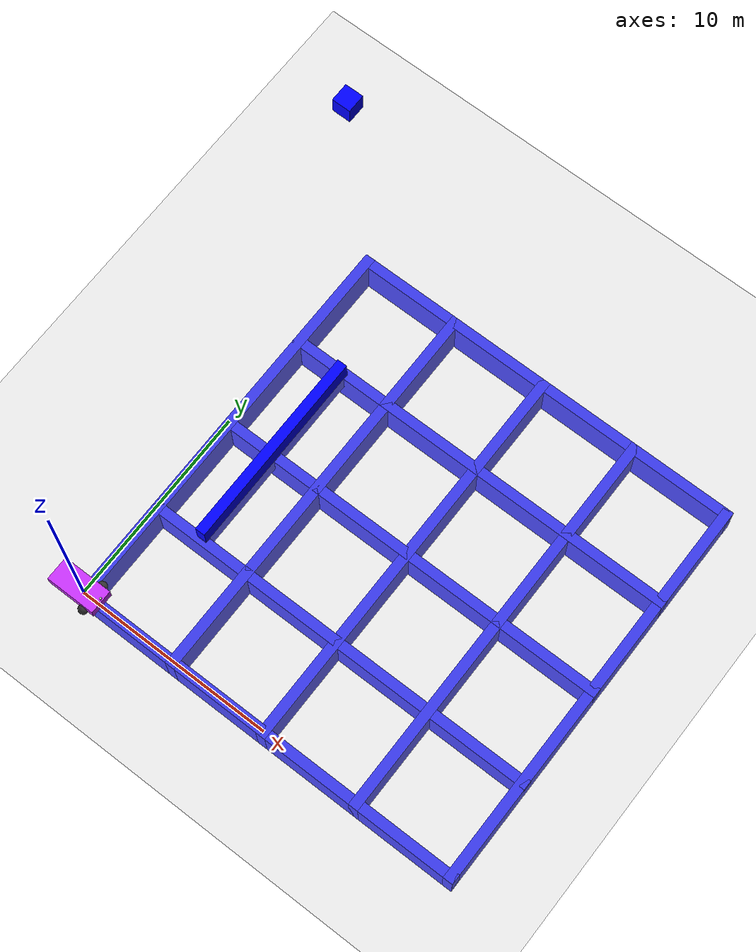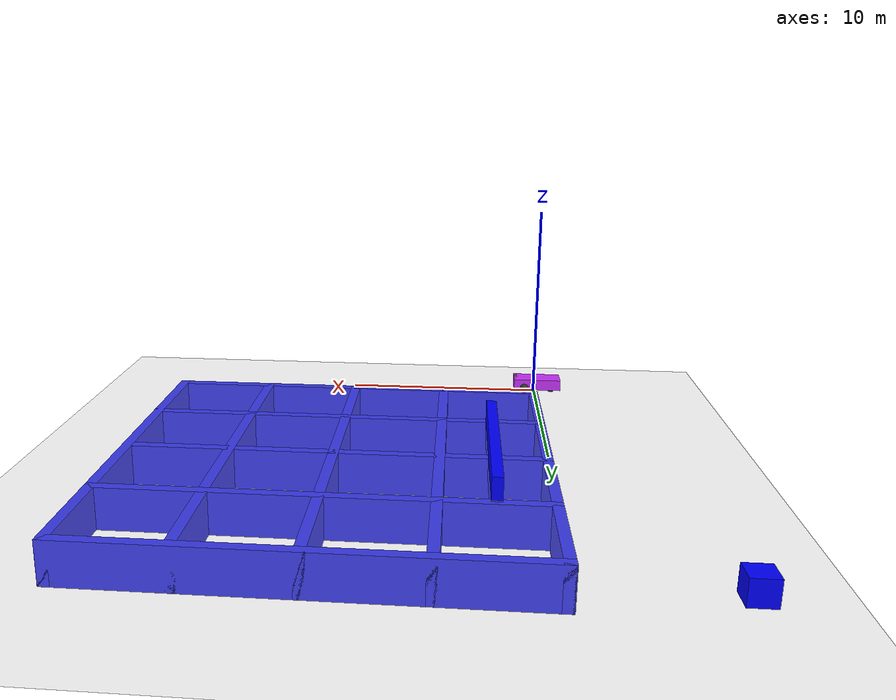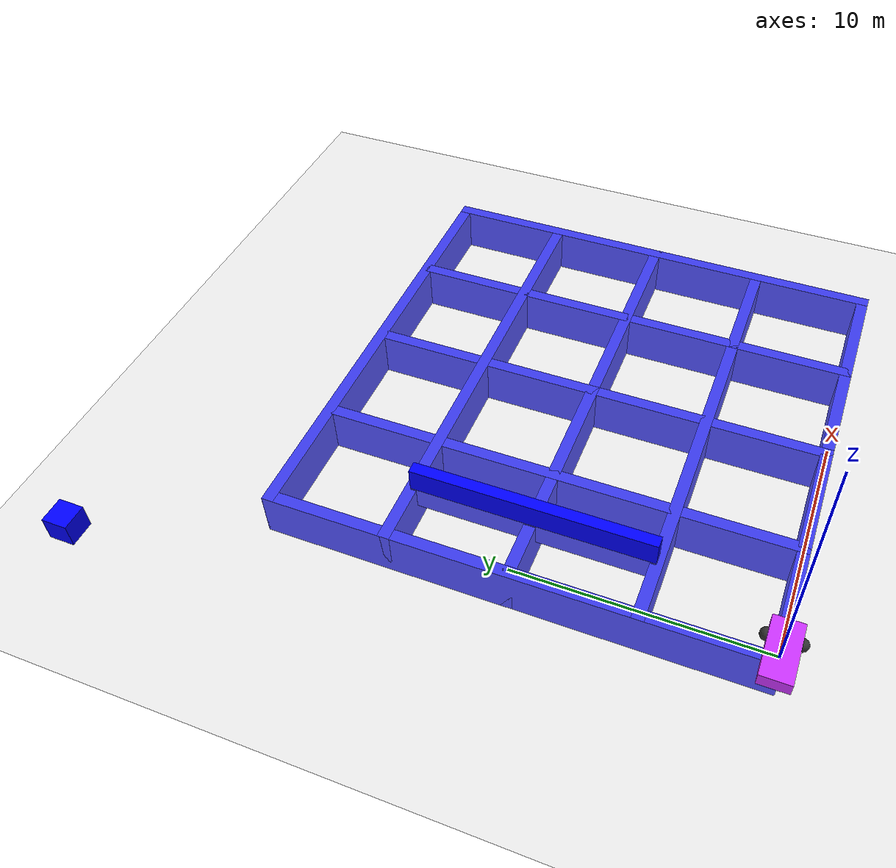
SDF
<?xml version="1.0" ?>
<sdf version="1.8">
  <world name="demo">
    <plugin
      filename="ignition-gazebo-physics-system"
      name="ignition::gazebo::systems::Physics">
    </plugin>
    <plugin
      filename="ignition-gazebo-sensors-system"
      name="ignition::gazebo::systems::Sensors">
      <render_engine>ogre2</render_engine>
    </plugin>
    <plugin
      filename="ignition-gazebo-scene-broadcaster-system"
      name="ignition::gazebo::systems::SceneBroadcaster">
    </plugin>
    <plugin
      filename="ignition-gazebo-user-commands-system"
      name="ignition::gazebo::systems::UserCommands">
    </plugin>
    <plugin
      filename="BasicSystem"
      name="ros_gz_gazebo::BasicSystem">
    </plugin>
    <plugin
      filename="FullSystem"
      name="ros_gz_gazebo::FullSystem">
    </plugin>

    <light name="sun" type="directional">
      <cast_shadows>true</cast_shadows>
      <pose>0 0 10 0 0 0</pose>
      <diffuse>0.8 0.8 0.8 1</diffuse>
      <specular>0.2 0.2 0.2 1</specular>
      <attenuation>
        <range>1000</range>
        <constant>0.9</constant>
        <linear>0.01</linear>
        <quadratic>0.001</quadratic>
      </attenuation>
      <direction>-0.5 0.1 -0.9</direction>
    </light>

    <model name="ground_plane">
      <static>true</static>
      <link name="link">
        <collision name="collision">
          <geometry>
            <plane>
              <normal>0 0 1</normal>
              <size>100 100</size>
            </plane>
          </geometry>
        </collision>
        <visual name="visual">
          <geometry>
            <plane>
              <normal>0 0 1</normal>
              <size>100 100</size>
            </plane>
          </geometry>
          <material>
            <ambient>0.8 0.8 0.8 1</ambient>
            <diffuse>0.8 0.8 0.8 0.1</diffuse>
            <specular>0.8 0.8 0.8 1</specular>
          </material>
        </visual>
      </link>
    </model>

    <model name='wall'>
        <static>true</static>
        <pose>0 10 -1.1 0 0 0</pose><!--pose relative to the world-->
        <link name='box'>
            <pose/>
            <visual name='visual'>
                <geometry>
                    <box>
                        <size>0.5 20.5 2.0</size>
                    </box>
                </geometry>
                <!--let's add color to our link-->
                <material>
                    <ambient>0.0 0.0 1.0 1</ambient>
                    <diffuse>0.0 0.0 1.0 1</diffuse>
                    <specular>0.0 0.0 1.0 1</specular>
                </material>
            </visual>
            <collision name='collision'>
                <geometry>
                    <box>
                        <size>0.5 20.5 2.0</size>
                    </box>
                </geometry>
            </collision>
            <sensor name='sensor_contact' type='contact'>
                <contact>
                    <collision>collision</collision>
                </contact>
            </sensor>
        </link>
        <plugin filename="libignition-gazebo-touchplugin-system.so"
                name="ignition::gazebo::systems::TouchPlugin">
            <target>robot</target>
            <namespace>wall</namespace>
            <time>0.001</time>
            <enabled>true</enabled>
        </plugin>
    </model>

    <model name='wall2'>
        <static>true</static>
        <pose>20 10 -1.1 0 0 0</pose><!--pose relative to the world-->
        <link name='box'>
            <pose/>
            <visual name='visual'>
                <geometry>
                    <box>
                        <size>0.5 20.5 2.0</size>
                    </box>
                </geometry>
                <!--let's add color to our link-->
                <material>
                    <ambient>0.0 0.0 1.0 1</ambient>
                    <diffuse>0.0 0.0 1.0 1</diffuse>
                    <specular>0.0 0.0 1.0 1</specular>
                </material>
            </visual>
            <collision name='collision'>
                <geometry>
                    <box>
                        <size>0.5 20.5 2.0</size>
                    </box>
                </geometry>
            </collision>
            <sensor name='sensor_contact' type='contact'>
                <contact>
                    <collision>collision</collision>
                </contact>
            </sensor>
        </link>
        <plugin filename="libignition-gazebo-touchplugin-system.so"
                name="ignition::gazebo::systems::TouchPlugin">
            <target>robot</target>
            <namespace>wall2</namespace>
            <time>0.001</time>
            <enabled>true</enabled>
        </plugin>
    </model>

    <model name='wall3'>
        <static>true</static>
        <pose> 10 20 -1.1 0 0 0</pose><!--pose relative to the world-->
        <link name='box'>
            <pose/>
            <visual name='visual'>
                <geometry>
                    <box>
                        <size>20.5 0.5 2.0</size>
                    </box>
                </geometry>
                <!--let's add color to our link-->
                <material>
                    <ambient>0.0 0.0 1.0 1</ambient>
                    <diffuse>0.0 0.0 1.0 1</diffuse>
                    <specular>0.0 0.0 1.0 1</specular>
                </material>
            </visual>
            <collision name='collision'>
                <geometry>
                    <box>
                        <size>20.5 0.5 2.0</size>
                    </box>
                </geometry>
            </collision>
            <sensor name='sensor_contact' type='contact'>
                <contact>
                    <collision>collision</collision>
                </contact>
            </sensor>
        </link>
        <plugin filename="libignition-gazebo-touchplugin-system.so"
                name="ignition::gazebo::systems::TouchPlugin">
            <target>robot</target>
            <namespace>wall3</namespace>
            <time>0.001</time>
            <enabled>true</enabled>
        </plugin>
    </model>

    <model name='wall4'>
        <static>true</static>
        <pose> 10 0 -1.1 0 0 0</pose><!--pose relative to the world-->
        <link name='box'>
            <pose/>
            <visual name='visual'>
                <geometry>
                    <box>
                        <size>20.5 0.5 2.0</size>
                    </box>
                </geometry>
                <!--let's add color to our link-->
                <material>
                    <ambient>0.0 0.0 1.0 1</ambient>
                    <diffuse>0.0 0.0 1.0 1</diffuse>
                    <specular>0.0 0.0 1.0 1</specular>
                </material>
            </visual>
            <collision name='collision'>
                <geometry>
                    <box>
                        <size>20.5 0.5 2.0</size>
                    </box>
                </geometry>
            </collision>
            <sensor name='sensor_contact' type='contact'>
                <contact>
                    <collision>collision</collision>
                </contact>
            </sensor>
        </link>
        <plugin filename="libignition-gazebo-touchplugin-system.so"
                name="ignition::gazebo::systems::TouchPlugin">
            <target>robot</target>
            <namespace>wall4</namespace>
            <time>0.001</time>
            <enabled>true</enabled>
        </plugin>
    </model>

    <model name='wall5'>
        <static>true</static>
        <pose> 10 5 -1.1 0 0 0</pose><!--pose relative to the world-->
        <link name='box'>
            <pose/>
            <visual name='visual'>
                <geometry>
                    <box>
                        <size>20.5 0.5 2.0</size>
                    </box>
                </geometry>
                <!--let's add color to our link-->
                <material>
                    <ambient>0.0 0.0 1.0 1</ambient>
                    <diffuse>0.0 0.0 1.0 1</diffuse>
                    <specular>0.0 0.0 1.0 1</specular>
                </material>
            </visual>
            <collision name='collision'>
                <geometry>
                    <box>
                        <size>20.5 0.5 2.0</size>
                    </box>
                </geometry>
            </collision>
            <sensor name='sensor_contact' type='contact'>
                <contact>
                    <collision>collision</collision>
                </contact>
            </sensor>
        </link>
        <plugin filename="libignition-gazebo-touchplugin-system.so"
                name="ignition::gazebo::systems::TouchPlugin">
            <target>robot</target>
            <namespace>wall4</namespace>
            <time>0.001</time>
            <enabled>true</enabled>
        </plugin>
    </model>

    <model name='wall6'>
        <static>true</static>
        <pose> 10 10 -1.1 0 0 0</pose><!--pose relative to the world-->
        <link name='box'>
            <pose/>
            <visual name='visual'>
                <geometry>
                    <box>
                        <size>20.5 0.5 2.0</size>
                    </box>
                </geometry>
                <!--let's add color to our link-->
                <material>
                    <ambient>0.0 0.0 1.0 1</ambient>
                    <diffuse>0.0 0.0 1.0 1</diffuse>
                    <specular>0.0 0.0 1.0 1</specular>
                </material>
            </visual>
            <collision name='collision'>
                <geometry>
                    <box>
                        <size>20.5 0.5 2.0</size>
                    </box>
                </geometry>
            </collision>
            <sensor name='sensor_contact' type='contact'>
                <contact>
                    <collision>collision</collision>
                </contact>
            </sensor>
        </link>
        <plugin filename="libignition-gazebo-touchplugin-system.so"
                name="ignition::gazebo::systems::TouchPlugin">
            <target>robot</target>
            <namespace>wall4</namespace>
            <time>0.001</time>
            <enabled>true</enabled>
        </plugin>
    </model>

    <model name='wall7'>
        <static>true</static>
        <pose> 10 15 -1.1 0 0 0</pose><!--pose relative to the world-->
        <link name='box'>
            <pose/>
            <visual name='visual'>
                <geometry>
                    <box>
                        <size>20.5 0.5 2.0</size>
                    </box>
                </geometry>
                <!--let's add color to our link-->
                <material>
                    <ambient>0.0 0.0 1.0 1</ambient>
                    <diffuse>0.0 0.0 1.0 1</diffuse>
                    <specular>0.0 0.0 1.0 1</specular>
                </material>
            </visual>
            <collision name='collision'>
                <geometry>
                    <box>
                        <size>20.5 0.5 2.0</size>
                    </box>
                </geometry>
            </collision>
            <sensor name='sensor_contact' type='contact'>
                <contact>
                    <collision>collision</collision>
                </contact>
            </sensor>
        </link>
        <plugin filename="libignition-gazebo-touchplugin-system.so"
                name="ignition::gazebo::systems::TouchPlugin">
            <target>robot</target>
            <namespace>wall4</namespace>
            <time>0.001</time>
            <enabled>true</enabled>
        </plugin>
    </model>

    <model name='wall8'>
        <static>true</static>
        <pose>15 10 -1.1 0 0 0</pose><!--pose relative to the world-->
        <link name='box'>
            <pose/>
            <visual name='visual'>
                <geometry>
                    <box>
                        <size>0.5 20.5 2.0</size>
                    </box>
                </geometry>
                <!--let's add color to our link-->
                <material>
                    <ambient>0.0 0.0 1.0 1</ambient>
                    <diffuse>0.0 0.0 1.0 1</diffuse>
                    <specular>0.0 0.0 1.0 1</specular>
                </material>
            </visual>
            <collision name='collision'>
                <geometry>
                    <box>
                        <size>0.5 20.5 2.0</size>
                    </box>
                </geometry>
            </collision>
            <sensor name='sensor_contact' type='contact'>
                <contact>
                    <collision>collision</collision>
                </contact>
            </sensor>
        </link>
        <plugin filename="libignition-gazebo-touchplugin-system.so"
                name="ignition::gazebo::systems::TouchPlugin">
            <target>robot</target>
            <namespace>wall2</namespace>
            <time>0.001</time>
            <enabled>true</enabled>
        </plugin>
    </model>

    <model name='wall9'>
        <static>true</static>
        <pose>15 10 -1.1 0 0 0</pose><!--pose relative to the world-->
        <link name='box'>
            <pose/>
            <visual name='visual'>
                <geometry>
                    <box>
                        <size>0.5 20.5 2.0</size>
                    </box>
                </geometry>
                <!--let's add color to our link-->
                <material>
                    <ambient>0.0 0.0 1.0 1</ambient>
                    <diffuse>0.0 0.0 1.0 1</diffuse>
                    <specular>0.0 0.0 1.0 1</specular>
                </material>
            </visual>
            <collision name='collision'>
                <geometry>
                    <box>
                        <size>0.5 20.5 2.0</size>
                    </box>
                </geometry>
            </collision>
            <sensor name='sensor_contact' type='contact'>
                <contact>
                    <collision>collision</collision>
                </contact>
            </sensor>
        </link>
        <plugin filename="libignition-gazebo-touchplugin-system.so"
                name="ignition::gazebo::systems::TouchPlugin">
            <target>robot</target>
            <namespace>wall2</namespace>
            <time>0.001</time>
            <enabled>true</enabled>
        </plugin>
    </model>

    <model name='wall10'>
        <static>true</static>
        <pose>10 10 -1.1 0 0 0</pose><!--pose relative to the world-->
        <link name='box'>
            <pose/>
            <visual name='visual'>
                <geometry>
                    <box>
                        <size>0.5 20.5 2.0</size>
                    </box>
                </geometry>
                <!--let's add color to our link-->
                <material>
                    <ambient>0.0 0.0 1.0 1</ambient>
                    <diffuse>0.0 0.0 1.0 1</diffuse>
                    <specular>0.0 0.0 1.0 1</specular>
                </material>
            </visual>
            <collision name='collision'>
                <geometry>
                    <box>
                        <size>0.5 20.5 2.0</size>
                    </box>
                </geometry>
            </collision>
            <sensor name='sensor_contact' type='contact'>
                <contact>
                    <collision>collision</collision>
                </contact>
            </sensor>
        </link>
        <plugin filename="libignition-gazebo-touchplugin-system.so"
                name="ignition::gazebo::systems::TouchPlugin">
            <target>robot</target>
            <namespace>wall2</namespace>
            <time>0.001</time>
            <enabled>true</enabled>
        </plugin>
    </model>

    <model name='wall11'>
        <static>true</static>
        <pose>5 10 -1.1 0 0 0</pose><!--pose relative to the world-->
        <link name='box'>
            <pose/>
            <visual name='visual'>
                <geometry>
                    <box>
                        <size>0.5 20.5 2.0</size>
                    </box>
                </geometry>
                <!--let's add color to our link-->
                <material>
                    <ambient>0.0 0.0 1.0 1</ambient>
                    <diffuse>0.0 0.0 1.0 1</diffuse>
                    <specular>0.0 0.0 1.0 1</specular>
                </material>
            </visual>
            <collision name='collision'>
                <geometry>
                    <box>
                        <size>0.5 20.5 2.0</size>
                    </box>
                </geometry>
            </collision>
            <sensor name='sensor_contact' type='contact'>
                <contact>
                    <collision>collision</collision>
                </contact>
            </sensor>
        </link>
        <plugin filename="libignition-gazebo-touchplugin-system.so"
                name="ignition::gazebo::systems::TouchPlugin">
            <target>robot</target>
            <namespace>wall2</namespace>
            <time>0.001</time>
            <enabled>true</enabled>
        </plugin>
    </model>

    <model name='square'>
        <static>true</static>
        <pose>-5 25 2 0 0 0</pose><!--pose relative to the world-->
        <link name='box'>
            <pose/>
            <visual name='visual'>
                <geometry>
                    <box>
                        <size>1 1 1</size>
                    </box>
                </geometry>
                <!--let's add color to our link-->
                <material>
                    <ambient>0.0 0.0 1.0 1</ambient>
                    <diffuse>0.0 0.0 1.0 1</diffuse>
                    <specular>0.0 0.0 1.0 1</specular>
                </material>
            </visual>
            <collision name='collision'>
                <geometry>
                    <box>
                        <size>1 1 1</size>
                    </box>
                </geometry>
            </collision>
            <sensor name='sensor_contact' type='contact'>
                <contact>
                    <collision>collision</collision>
                </contact>
            </sensor>
        </link>
        <plugin filename="libignition-gazebo-touchplugin-system.so"
                name="ignition::gazebo::systems::TouchPlugin">
            <target>robot</target>
            <namespace>wall</namespace>
            <time>0.001</time>
            <enabled>true</enabled>
        </plugin>
    </model>

<model name='block1'>
        <static>true</static>
        <pose>2.5 10 0 0 0 0</pose><!--pose relative to the world-->
        <link name='box'>
            <pose/>
            <visual name='visual'>
                <geometry>
                    <box>
                        <size>0.5 10 2.0</size>
                    </box>
                </geometry>
                <!--let's add color to our link-->
                <material>
                    <ambient>0.0 0.0 1.0 1</ambient>
                    <diffuse>0.0 0.0 1.0 1</diffuse>
                    <specular>0.0 0.0 1.0 1</specular>
                </material>
            </visual>
            <collision name='collision'>
                <geometry>
                    <box>
                        <size>0.5 10 2.0</size>
                    </box>
                </geometry>
            </collision>
            <sensor name='sensor_contact' type='contact'>
                <contact>
                    <collision>collision</collision>
                </contact>
            </sensor>
        </link>
        <plugin filename="libignition-gazebo-touchplugin-system.so"
                name="ignition::gazebo::systems::TouchPlugin">
            <target>robot</target>
            <namespace>wall</namespace>
            <time>0.001</time>
            <enabled>true</enabled>
        </plugin>
    </model>

    <model name="robot">
      <self_collide>true</self_collide>
      <pose>0 0 0.35 0 0 0</pose>
      <include merge="true">
        <uri>package://ros_gz_description/models/robot</uri>
      </include>

      <plugin filename="libignition-gazebo-imu-system.so"
                name="ignition::gazebo::systems::Imu">
      </plugin>

      <plugin
        filename="ignition-gazebo-joint-state-publisher-system"
        name="ignition::gazebo::systems::JointStatePublisher">
      </plugin>

      <plugin
        filename="ignition-gazebo-pose-publisher-system"
        name="ignition::gazebo::systems::PosePublisher">
        <publish_link_pose>true</publish_link_pose>
        <use_pose_vector_msg>true</use_pose_vector_msg>
        <static_publisher>true</static_publisher>
        <static_update_frequency>1</static_update_frequency>
      </plugin>

      <plugin
        filename="ignition-gazebo-odometry-publisher-system"
        name="ignition::gazebo::systems::OdometryPublisher">
        <odom_frame>robot/odom</odom_frame>
        <robot_base_frame>robot</robot_base_frame>
      </plugin>
    </model>

  </world>
</sdf>

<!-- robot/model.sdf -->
<sdf version="1.8">
    <model name='robot'>
      <link name='chassis'>
        <pose>-0.151427 -0 0.175 0 -0 0</pose>
        <inertial>
          <mass>1.14395</mass>
          <inertia>
            <ixx>0.126164</ixx>
            <ixy>0</ixy>
            <ixz>0</ixz>
            <iyy>0.416519</iyy>
            <iyz>0</iyz>
            <izz>0.481014</izz>
          </inertia>
        </inertial>
        <visual name='visual_chassis'>
          <geometry>
            <box>
              <size>2.51142 1.2 0.568726</size>
            </box>
          </geometry>
          <material>
            <ambient>0.8 0.2 1.0 1</ambient>
            <diffuse>0.8 0.2 1.0 1</diffuse>
            <specular>0.0 0.0 1.0 1</specular>
          </material>
        </visual>
        <collision name='collision_chassis'>
          <geometry>
            <box>
              <size>2.01142 1 0.568726</size>
            </box>
          </geometry>
        </collision>
        <sensor name="imu_sensor" type="imu">
          <always_on>1</always_on>
          <update_rate>1</update_rate>
          <visualize>true</visualize>
          <topic>imu</topic>
        </sensor>
      </link>

      <link name='left_wheel'>
        <pose>0.554283 0.625029 -0.025 -1.5707 0 0</pose>
        <inertial>
          <mass>2</mass>
          <inertia>
            <ixx>0.145833</ixx>
            <ixy>0</ixy>
            <ixz>0</ixz>
            <iyy>0.145833</iyy>
            <iyz>0</iyz>
            <izz>0.125</izz>
          </inertia>
        </inertial>
        <visual name='visual_left_wheel'>
          <geometry>
            <sphere>
              <radius>0.25</radius>
            </sphere>
          </geometry>
          <material>
            <ambient>0.2 0.2 0.2 1</ambient>
            <diffuse>0.2 0.2 0.2 1</diffuse>
            <specular>0.2 0.2 0.2 1</specular>
          </material>
        </visual>
        <collision name='collision_left_wheel'>
          <geometry>
            <sphere>
              <radius>0.25</radius>
            </sphere>
          </geometry>
        </collision>
      </link>

      <link name='right_wheel'>
        <pose>0.554282 -0.625029 -0.025 -1.5707 0 0</pose>
        <inertial>
          <mass>2</mass>
          <inertia>
            <ixx>0.145833</ixx>
            <ixy>0</ixy>
            <ixz>0</ixz>
            <iyy>0.145833</iyy>
            <iyz>0</iyz>
            <izz>0.125</izz>
          </inertia>
        </inertial>
        <visual name='visual_right_wheel'>
          <geometry>
            <sphere>
              <radius>0.25</radius>
            </sphere>
          </geometry>
          <material>
            <ambient>0.2 0.2 0.2 1</ambient>
            <diffuse>0.2 0.2 0.2 1</diffuse>
            <specular>0.2 0.2 0.2 1</specular>
          </material>
        </visual>
        <collision name='collision_right_wheel'>
          <geometry>
            <sphere>
              <radius>0.25</radius>
            </sphere>
          </geometry>
        </collision>
      </link>

      <link name='caster'>
        <pose>-0.957138 -0 -0.125 0 -0 0</pose>
        <inertial>
          <mass>1</mass>
          <inertia>
            <ixx>0.1</ixx>
            <ixy>0</ixy>
            <ixz>0</ixz>
            <iyy>0.1</iyy>
            <iyz>0</iyz>
            <izz>0.1</izz>
          </inertia>
        </inertial>
        <visual name='visual_caster'>
          <geometry>
            <sphere>
              <radius>0.25</radius>
            </sphere>
          </geometry>
          <material>
            <ambient>0.2 0.2 0.2 1</ambient>
            <diffuse>0.2 0.2 0.2 1</diffuse>
            <specular>0.2 0.2 0.2 1</specular>
          </material>
        </visual>
        <collision name='collision_caster'>
          <geometry>
            <sphere>
              <radius>0.25</radius>
            </sphere>
          </geometry>
        </collision>
      </link>

      <link name="lidar_link">
        <pose>1 0.1 0.5 0 0 0</pose>
        <inertial>
          <mass>0.1</mass>
          <inertia>
            <ixx>0.000166667</ixx>
            <iyy>0.000166667</iyy>
            <izz>0.000166667</izz>
          </inertia>
        </inertial>
        <collision name="collision">
          <geometry>
            <box>
              <size>0.1 0.1 0.1</size>
            </box>
          </geometry>
        </collision>
        <visual name="visual">
          <geometry>
            <box>
              <size>0.1 0.1 0.1</size>
            </box>
          </geometry>
        </visual>
        <sensor name='gpu_lidar' type='gpu_lidar'>
          <pose>0 0 0 0 0 0</pose>
          <topic>scan</topic>
          <ignition_frame_id>robot/lidar_link</ignition_frame_id>
          <update_rate>10</update_rate>
          <lidar>
            <scan>
              <horizontal>
                <samples>640</samples>
                <resolution>1</resolution>
                <min_angle>-1.396263</min_angle>
                <max_angle>1.396263</max_angle>
              </horizontal>
              <vertical>
                <samples>1</samples>
                <resolution>1</resolution>
                <min_angle>0</min_angle>
                <max_angle>0</max_angle>
              </vertical>
            </scan>
            <range>
              <min>0.08</min>
              <max>10.0</max>
              <resolution>0.01</resolution>
            </range>
          </lidar>
          <visualize>true</visualize>
        </sensor>
      </link>

      <link name="camera_link">
          <pose>1 -0.1 0.5 0 0 0</pose>
          <inertial>
              <mass>0.1</mass>
              <inertia>
                  <ixx>0.000166667</ixx>
                  <iyy>0.000166667</iyy>
                  <izz>0.000166667</izz>
              </inertia>
          </inertial>

          <collision name="collision">
              <geometry>
                  <box>
                      <size>0.1 0.1 0.1</size>
                  </box>
              </geometry>
          </collision>
          <visual name="visual">
              <geometry>
                  <box>
                      <size>0.1 0.1 0.1</size>
                  </box>
              </geometry>
          </visual>

          <sensor name="camera" type="camera">
              <camera>
                  <horizontal_fov>1.047</horizontal_fov>
                  <image>
                      <width>380</width>
                      <height>240</height>
                  </image>
                  <clip>
                      <near>0.1</near>
                      <far>100</far>
                  </clip>
              </camera>
              <always_on>1</always_on>
              <update_rate>30</update_rate>
              <visualize>true</visualize>
              <topic>camera</topic>
          </sensor>
      </link>

      <joint name='lidar_joint' type='fixed'>
        <parent>chassis</parent>
        <child>lidar_link</child>
      </joint>

      <joint name='camera' type='fixed'>
        <parent>chassis</parent>
        <child>camera_link</child>
      </joint>

      <joint name='left_wheel_joint' type='revolute'>
        <parent>chassis</parent>
        <child>left_wheel</child>
        <axis>
          <xyz>0 0 1</xyz>
          <limit>
            <lower>-1.79769e+308</lower>
            <upper>1.79769e+308</upper>
          </limit>
        </axis>
      </joint>

      <joint name='right_wheel_joint' type='revolute'>
        <parent>chassis</parent>
        <child>right_wheel</child>
        <axis>
          <xyz>0 0 1</xyz>
          <limit>
            <lower>-1.79769e+308</lower>
            <upper>1.79769e+308</upper>
          </limit>
        </axis>
      </joint>

      <joint name='caster_wheel' type='ball'>
        <parent>chassis</parent>
        <child>caster</child>
      </joint>

      <plugin
        filename="ignition-gazebo-diff-drive-system"
        name="ignition::gazebo::systems::DiffDrive">
        <left_joint>left_wheel_joint</left_joint>
        <right_joint>right_wheel_joint</right_joint>
        <wheel_separation>1.25</wheel_separation>
        <wheel_radius>0.3</wheel_radius>
        <odom_publish_frequency>1</odom_publish_frequency>
        <max_linear_acceleration>1</max_linear_acceleration>
        <min_linear_acceleration>-1</min_linear_acceleration>
        <max_angular_acceleration>2</max_angular_acceleration>
        <min_angular_acceleration>-2</min_angular_acceleration>
        <max_linear_velocity>0.5</max_linear_velocity>
        <min_linear_velocity>-0.5</min_linear_velocity>
        <max_angular_velocity>1</max_angular_velocity>
        <min_angular_velocity>-1</min_angular_velocity>
      </plugin>
    </model>
</sdf>
